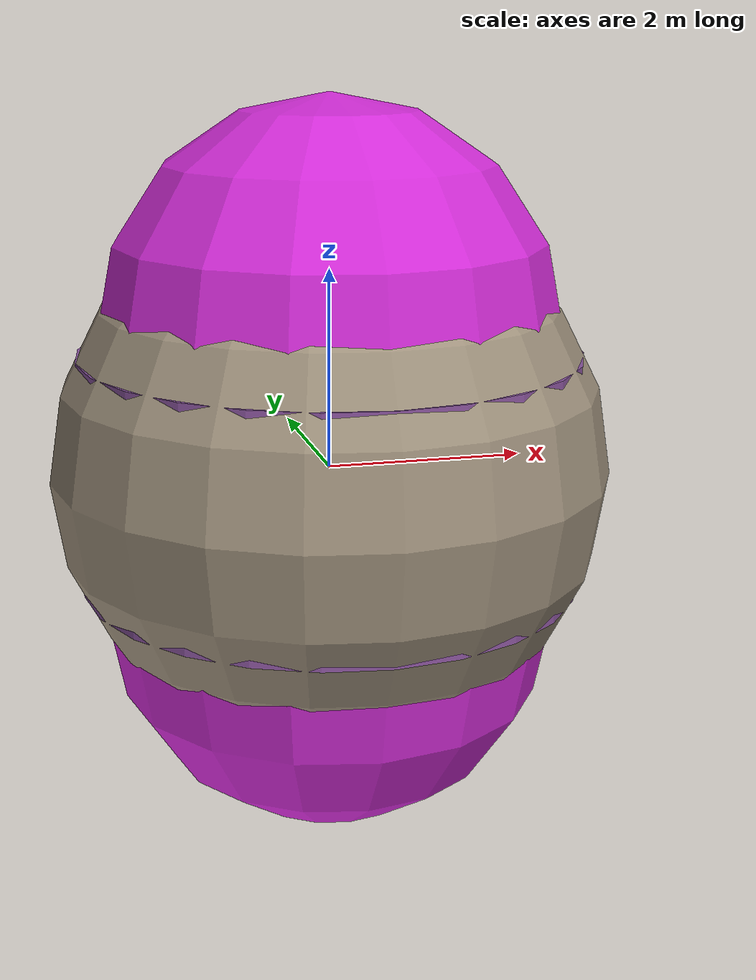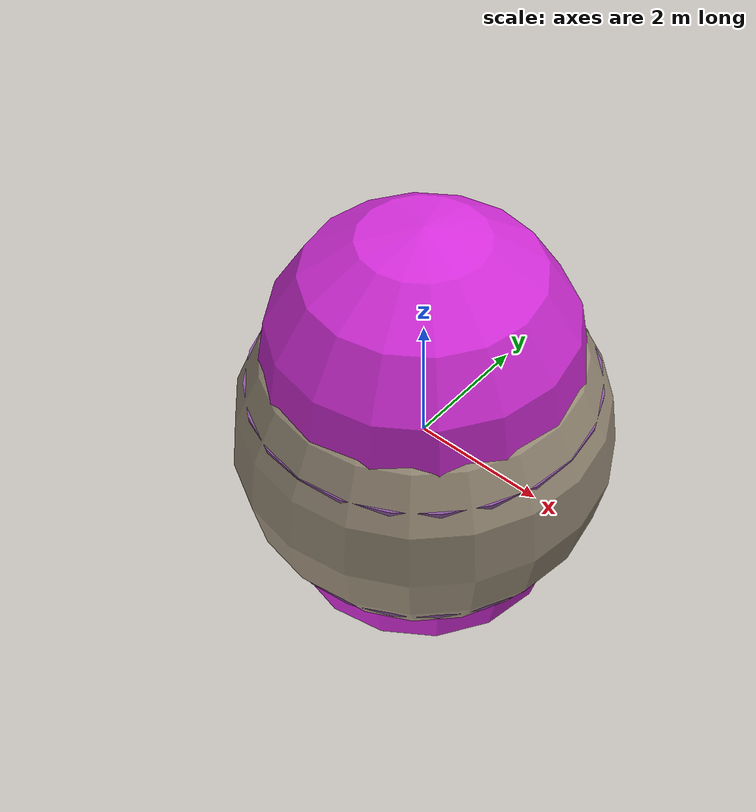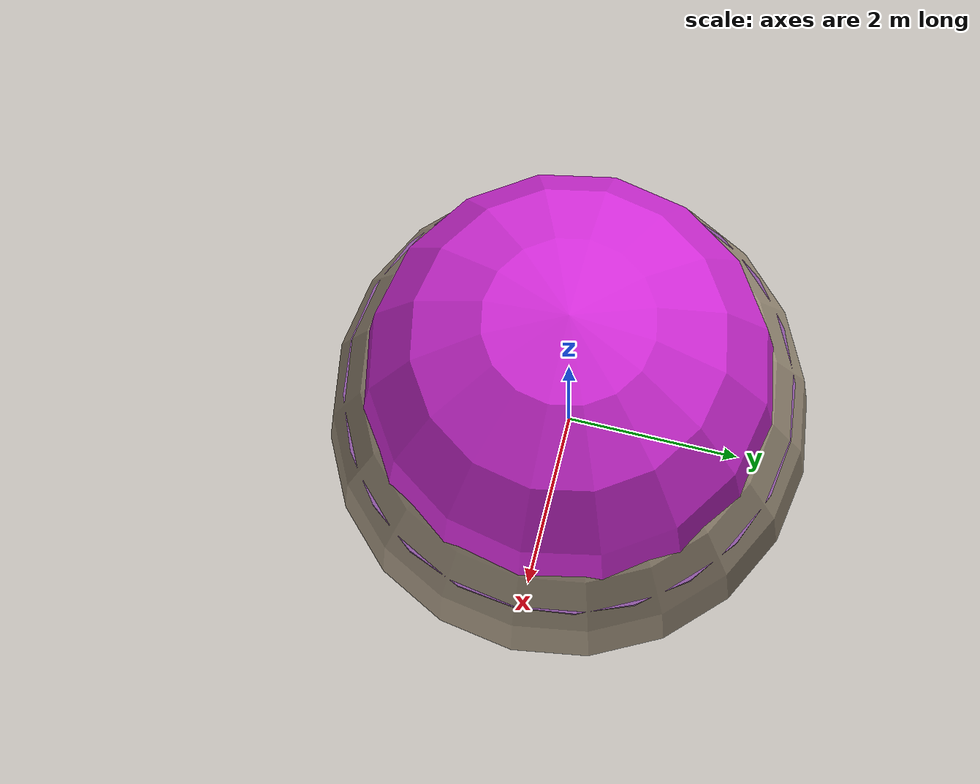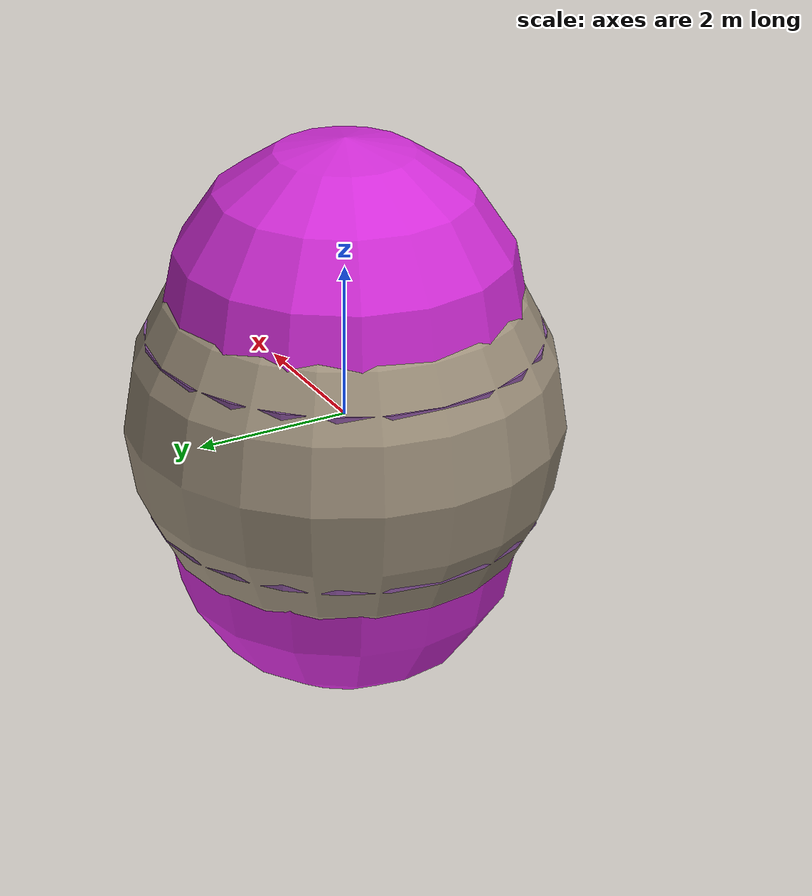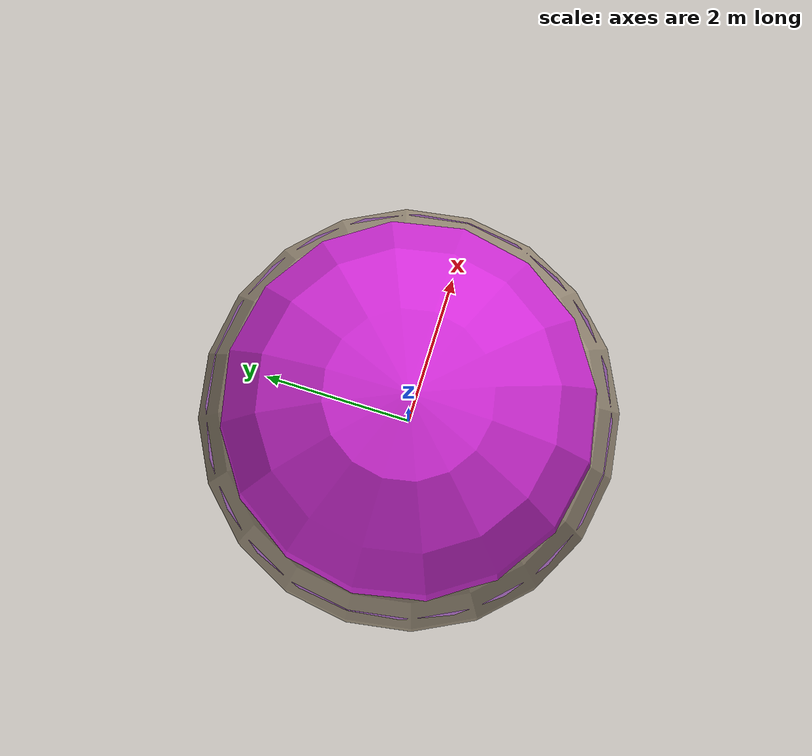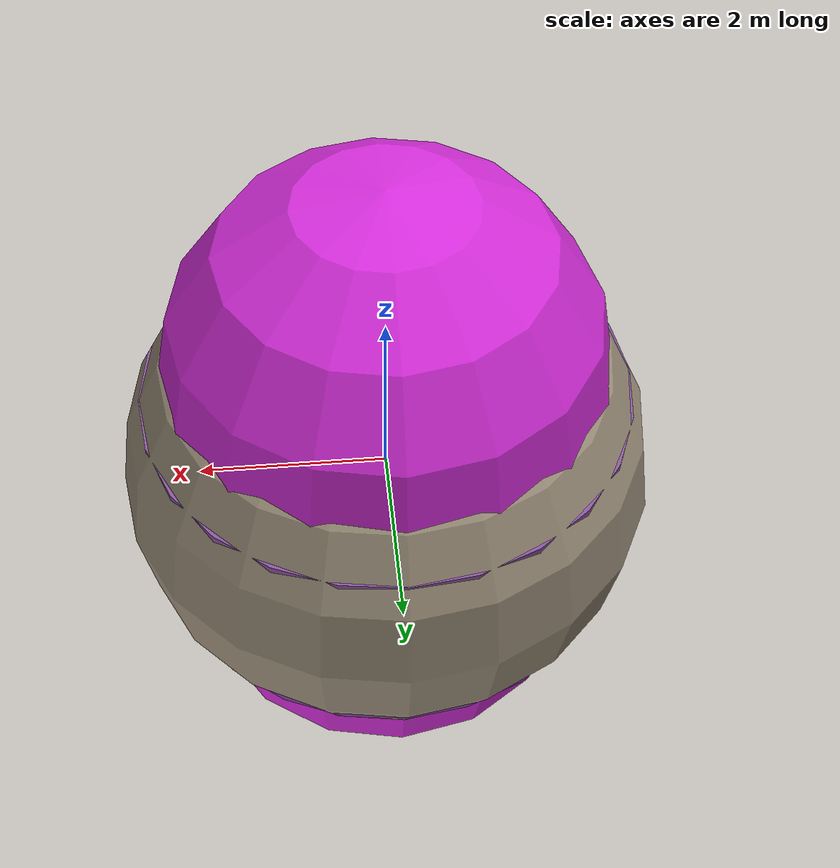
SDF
<sdf version='1.11'>
  <world name='world_0'>
    <gravity>0 0 -9.8066499999999994</gravity>
    <magnetic_field>5.5644999999999998e-06 2.2875799999999999e-05 -4.2388400000000002e-05</magnetic_field>
    <wind>
      <linear_velocity>0 0 0</linear_velocity>
    </wind>
    <physics default='false' type='ode'>
      <max_step_size>0.001</max_step_size>
      <real_time_factor>1</real_time_factor>
      <max_contacts>20</max_contacts>
    </physics>
    <model name='model_0'>
      <static>false</static>
      <self_collide>false</self_collide>
      <allow_auto_disable>true</allow_auto_disable>
      <enable_wind>false</enable_wind>
      <pose>0 0 0 0 0 0</pose>
      <link name='link_0'>
        <pose>0 0 0 0 0 0</pose>
        <inertial>
          <pose>0 0 0 0 0 0</pose>
          <mass>1</mass>
          <inertia>
            <ixx>1</ixx>
            <ixy>0</ixy>
            <ixz>0</ixz>
            <iyy>1</iyy>
            <iyz>0</iyz>
            <izz>1</izz>
          </inertia>
        </inertial>
        <enable_wind>false</enable_wind>
        <collision name='collision_0'>
          <pose>0 0 0 0 0 0</pose>
          <geometry>
            <capsule>
              <radius>2.2846069828375208</radius>
              <length>2.8134129173356595</length>
            </capsule>
          </geometry>
          <surface>
            <contact>
              <collide_bitmask>255</collide_bitmask>
            </contact>
            <friction>
              <ode>
                <mu>1</mu>
                <mu2>1</mu2>
                <slip1>0</slip1>
                <slip2>0</slip2>
                <fdir1>0 0 0</fdir1>
              </ode>
            </friction>
          </surface>
        </collision>
        <visual name='visual_0'>
          <pose>0 0 0 0 0 0</pose>
          <geometry>
            <capsule>
              <radius>2.2846069828375208</radius>
              <length>2.8134129173356595</length>
            </capsule>
          </geometry>
          <cast_shadows>true</cast_shadows>
          <laser_retro>0</laser_retro>
          <transparency>0</transparency>
          <visibility_flags>4294967295</visibility_flags>
          <material>
            <ambient>0.827514529 0.172673672 0.847678721 1</ambient>
            <diffuse>0.827514529 0.172673672 0.847678721 1</diffuse>
            <specular>0 0 0 1</specular>
            <emissive>0 0 0 1</emissive>
            <render_order>0</render_order>
            <lighting>true</lighting>
            <double_sided>false</double_sided>
            <shader type='pixel'/>
          </material>
        </visual>
      </link>
      <link name='link_1'>
        <pose>0 0 0 0 0 0</pose>
        <inertial>
          <pose>0 0 0 0 0 0</pose>
          <mass>1</mass>
          <inertia>
            <ixx>1</ixx>
            <ixy>0</ixy>
            <ixz>0</ixz>
            <iyy>1</iyy>
            <iyz>0</iyz>
            <izz>1</izz>
          </inertia>
        </inertial>
        <enable_wind>false</enable_wind>
        <collision name='collision_1'>
          <pose>0 0 0 0 0 0</pose>
          <geometry>
            <capsule>
              <radius>1.3565003896441572</radius>
              <length>2.2001328972218723</length>
            </capsule>
          </geometry>
          <surface>
            <contact>
              <collide_bitmask>255</collide_bitmask>
            </contact>
            <friction>
              <ode>
                <mu>1</mu>
                <mu2>1</mu2>
                <slip1>0</slip1>
                <slip2>0</slip2>
                <fdir1>0 0 0</fdir1>
              </ode>
            </friction>
          </surface>
        </collision>
        <visual name='visual_1'>
          <pose>0 0 0 0 0 0</pose>
          <geometry>
            <capsule>
              <radius>1.3565003896441572</radius>
              <length>2.2001328972218723</length>
            </capsule>
          </geometry>
          <cast_shadows>true</cast_shadows>
          <laser_retro>0</laser_retro>
          <transparency>0</transparency>
          <visibility_flags>4294967295</visibility_flags>
          <material>
            <ambient>0.748498976 0.460114151 0.171141386 1</ambient>
            <diffuse>0.748498976 0.460114151 0.171141386 1</diffuse>
            <specular>0 0 0 1</specular>
            <emissive>0 0 0 1</emissive>
            <render_order>0</render_order>
            <lighting>true</lighting>
            <double_sided>false</double_sided>
            <shader type='pixel'/>
          </material>
        </visual>
      </link>
      <link name='link_2'>
        <pose>0 0 0 0 0 0</pose>
        <inertial>
          <pose>0 0 0 0 0 0</pose>
          <mass>1</mass>
          <inertia>
            <ixx>1</ixx>
            <ixy>0</ixy>
            <ixz>0</ixz>
            <iyy>1</iyy>
            <iyz>0</iyz>
            <izz>1</izz>
          </inertia>
        </inertial>
        <enable_wind>false</enable_wind>
        <collision name='collision_2'>
          <pose>0 0 0 0 0 0</pose>
          <geometry>
            <sphere>
              <radius>1.3497091000071264</radius>
            </sphere>
          </geometry>
          <surface>
            <contact>
              <collide_bitmask>255</collide_bitmask>
            </contact>
            <friction>
              <ode>
                <mu>1</mu>
                <mu2>1</mu2>
                <slip1>0</slip1>
                <slip2>0</slip2>
                <fdir1>0 0 0</fdir1>
              </ode>
            </friction>
          </surface>
        </collision>
        <visual name='visual_2'>
          <pose>0 0 0 0 0 0</pose>
          <geometry>
            <sphere>
              <radius>1.3497091000071264</radius>
            </sphere>
          </geometry>
          <cast_shadows>true</cast_shadows>
          <laser_retro>0</laser_retro>
          <transparency>0</transparency>
          <visibility_flags>4294967295</visibility_flags>
          <material>
            <ambient>0.523233235 0.625119328 0.323910534 1</ambient>
            <diffuse>0.523233235 0.625119328 0.323910534 1</diffuse>
            <specular>0 0 0 1</specular>
            <emissive>0 0 0 1</emissive>
            <render_order>0</render_order>
            <lighting>true</lighting>
            <double_sided>false</double_sided>
            <shader type='pixel'/>
          </material>
        </visual>
      </link>
      <link name='link_3'>
        <pose>0 0 0 0 0 0</pose>
        <inertial>
          <pose>0 0 0 0 0 0</pose>
          <mass>1</mass>
          <inertia>
            <ixx>1</ixx>
            <ixy>0</ixy>
            <ixz>0</ixz>
            <iyy>1</iyy>
            <iyz>0</iyz>
            <izz>1</izz>
          </inertia>
        </inertial>
        <enable_wind>false</enable_wind>
        <collision name='collision_3'>
          <pose>0 0 0 0 0 0</pose>
          <geometry>
            <cylinder>
              <radius>2.4989582118105296</radius>
              <length>2.3633662039209922</length>
            </cylinder>
          </geometry>
          <surface>
            <contact>
              <collide_bitmask>255</collide_bitmask>
            </contact>
            <friction>
              <ode>
                <mu>1</mu>
                <mu2>1</mu2>
                <slip1>0</slip1>
                <slip2>0</slip2>
                <fdir1>0 0 0</fdir1>
              </ode>
            </friction>
          </surface>
        </collision>
        <visual name='visual_3'>
          <pose>0 0 0 0 0 0</pose>
          <geometry>
            <cylinder>
              <radius>2.4989582118105296</radius>
              <length>2.3633662039209922</length>
            </cylinder>
          </geometry>
          <cast_shadows>true</cast_shadows>
          <laser_retro>0</laser_retro>
          <transparency>0</transparency>
          <visibility_flags>4294967295</visibility_flags>
          <material>
            <ambient>0.539080918 0.329530925 0.61648345 1</ambient>
            <diffuse>0.539080918 0.329530925 0.61648345 1</diffuse>
            <specular>0 0 0 1</specular>
            <emissive>0 0 0 1</emissive>
            <render_order>0</render_order>
            <lighting>true</lighting>
            <double_sided>false</double_sided>
            <shader type='pixel'/>
          </material>
        </visual>
      </link>
      <link name='link_4'>
        <pose>0 0 0 0 0 0</pose>
        <inertial>
          <pose>0 0 0 0 0 0</pose>
          <mass>1</mass>
          <inertia>
            <ixx>1</ixx>
            <ixy>0</ixy>
            <ixz>0</ixz>
            <iyy>1</iyy>
            <iyz>0</iyz>
            <izz>1</izz>
          </inertia>
        </inertial>
        <enable_wind>false</enable_wind>
        <collision name='collision_4'>
          <pose>0 0 0 0 0 0</pose>
          <geometry>
            <cylinder>
              <radius>1.0608146508026859</radius>
              <length>2.5099824759865434</length>
            </cylinder>
          </geometry>
          <surface>
            <contact>
              <collide_bitmask>255</collide_bitmask>
            </contact>
            <friction>
              <ode>
                <mu>1</mu>
                <mu2>1</mu2>
                <slip1>0</slip1>
                <slip2>0</slip2>
                <fdir1>0 0 0</fdir1>
              </ode>
            </friction>
          </surface>
        </collision>
        <visual name='visual_4'>
          <pose>0 0 0 0 0 0</pose>
          <geometry>
            <cylinder>
              <radius>1.0608146508026859</radius>
              <length>2.5099824759865434</length>
            </cylinder>
          </geometry>
          <cast_shadows>true</cast_shadows>
          <laser_retro>0</laser_retro>
          <transparency>0</transparency>
          <visibility_flags>4294967295</visibility_flags>
          <material>
            <ambient>0.0720949844 0.435474277 0.79537642 1</ambient>
            <diffuse>0.0720949844 0.435474277 0.79537642 1</diffuse>
            <specular>0 0 0 1</specular>
            <emissive>0 0 0 1</emissive>
            <render_order>0</render_order>
            <lighting>true</lighting>
            <double_sided>false</double_sided>
            <shader type='pixel'/>
          </material>
        </visual>
      </link>
    </model>
    <model name='model_1'>
      <static>false</static>
      <self_collide>false</self_collide>
      <allow_auto_disable>true</allow_auto_disable>
      <enable_wind>false</enable_wind>
      <pose>0 0 0 0 0 0</pose>
      <link name='link_5'>
        <pose>0 0 0 0 0 0</pose>
        <inertial>
          <pose>0 0 0 0 0 0</pose>
          <mass>1</mass>
          <inertia>
            <ixx>1</ixx>
            <ixy>0</ixy>
            <ixz>0</ixz>
            <iyy>1</iyy>
            <iyz>0</iyz>
            <izz>1</izz>
          </inertia>
        </inertial>
        <enable_wind>false</enable_wind>
        <collision name='collision_5'>
          <pose>0 0 0 0 0 0</pose>
          <geometry>
            <capsule>
              <radius>1.8493760360779095</radius>
              <length>2.6660123862123624</length>
            </capsule>
          </geometry>
          <surface>
            <contact>
              <collide_bitmask>255</collide_bitmask>
            </contact>
            <friction>
              <ode>
                <mu>1</mu>
                <mu2>1</mu2>
                <slip1>0</slip1>
                <slip2>0</slip2>
                <fdir1>0 0 0</fdir1>
              </ode>
            </friction>
          </surface>
        </collision>
        <visual name='visual_5'>
          <pose>0 0 0 0 0 0</pose>
          <geometry>
            <capsule>
              <radius>1.8493760360779095</radius>
              <length>2.6660123862123624</length>
            </capsule>
          </geometry>
          <cast_shadows>true</cast_shadows>
          <laser_retro>0</laser_retro>
          <transparency>0</transparency>
          <visibility_flags>4294967295</visibility_flags>
          <material>
            <ambient>0.369175732 0.0446811207 0.445994288 1</ambient>
            <diffuse>0.369175732 0.0446811207 0.445994288 1</diffuse>
            <specular>0 0 0 1</specular>
            <emissive>0 0 0 1</emissive>
            <render_order>0</render_order>
            <lighting>true</lighting>
            <double_sided>false</double_sided>
            <shader type='pixel'/>
          </material>
        </visual>
      </link>
      <link name='link_6'>
        <pose>0 0 0 0 0 0</pose>
        <inertial>
          <pose>0 0 0 0 0 0</pose>
          <mass>1</mass>
          <inertia>
            <ixx>1</ixx>
            <ixy>0</ixy>
            <ixz>0</ixz>
            <iyy>1</iyy>
            <iyz>0</iyz>
            <izz>1</izz>
          </inertia>
        </inertial>
        <enable_wind>false</enable_wind>
        <collision name='collision_6'>
          <pose>0 0 0 0 0 0</pose>
          <geometry>
            <capsule>
              <radius>1.3330080524129895</radius>
              <length>1.63071210387847</length>
            </capsule>
          </geometry>
          <surface>
            <contact>
              <collide_bitmask>255</collide_bitmask>
            </contact>
            <friction>
              <ode>
                <mu>1</mu>
                <mu2>1</mu2>
                <slip1>0</slip1>
                <slip2>0</slip2>
                <fdir1>0 0 0</fdir1>
              </ode>
            </friction>
          </surface>
        </collision>
        <visual name='visual_6'>
          <pose>0 0 0 0 0 0</pose>
          <geometry>
            <capsule>
              <radius>1.3330080524129895</radius>
              <length>1.63071210387847</length>
            </capsule>
          </geometry>
          <cast_shadows>true</cast_shadows>
          <laser_retro>0</laser_retro>
          <transparency>0</transparency>
          <visibility_flags>4294967295</visibility_flags>
          <material>
            <ambient>0.552939773 0.0517613515 0.724765003 1</ambient>
            <diffuse>0.552939773 0.0517613515 0.724765003 1</diffuse>
            <specular>0 0 0 1</specular>
            <emissive>0 0 0 1</emissive>
            <render_order>0</render_order>
            <lighting>true</lighting>
            <double_sided>false</double_sided>
            <shader type='pixel'/>
          </material>
        </visual>
      </link>
      <link name='link_7'>
        <pose>0 0 0 0 0 0</pose>
        <inertial>
          <pose>0 0 0 0 0 0</pose>
          <mass>1</mass>
          <inertia>
            <ixx>1</ixx>
            <ixy>0</ixy>
            <ixz>0</ixz>
            <iyy>1</iyy>
            <iyz>0</iyz>
            <izz>1</izz>
          </inertia>
        </inertial>
        <enable_wind>false</enable_wind>
        <collision name='collision_7'>
          <pose>0 0 0 0 0 0</pose>
          <geometry>
            <sphere>
              <radius>2.7874480044002281</radius>
            </sphere>
          </geometry>
          <surface>
            <contact>
              <collide_bitmask>255</collide_bitmask>
            </contact>
            <friction>
              <ode>
                <mu>1</mu>
                <mu2>1</mu2>
                <slip1>0</slip1>
                <slip2>0</slip2>
                <fdir1>0 0 0</fdir1>
              </ode>
            </friction>
          </surface>
        </collision>
        <visual name='visual_7'>
          <pose>0 0 0 0 0 0</pose>
          <geometry>
            <sphere>
              <radius>2.7874480044002281</radius>
            </sphere>
          </geometry>
          <cast_shadows>true</cast_shadows>
          <laser_retro>0</laser_retro>
          <transparency>0</transparency>
          <visibility_flags>4294967295</visibility_flags>
          <material>
            <ambient>0.623547316 0.570981145 0.490044594 1</ambient>
            <diffuse>0.623547316 0.570981145 0.490044594 1</diffuse>
            <specular>0 0 0 1</specular>
            <emissive>0 0 0 1</emissive>
            <render_order>0</render_order>
            <lighting>true</lighting>
            <double_sided>false</double_sided>
            <shader type='pixel'/>
          </material>
        </visual>
      </link>
      <link name='link_8'>
        <pose>0 0 0 0 0 0</pose>
        <inertial>
          <pose>0 0 0 0 0 0</pose>
          <mass>1</mass>
          <inertia>
            <ixx>1</ixx>
            <ixy>0</ixy>
            <ixz>0</ixz>
            <iyy>1</iyy>
            <iyz>0</iyz>
            <izz>1</izz>
          </inertia>
        </inertial>
        <enable_wind>false</enable_wind>
        <collision name='collision_8'>
          <pose>0 0 0 0 0 0</pose>
          <geometry>
            <capsule>
              <radius>1.1752741327614658</radius>
              <length>1.0230929708268364</length>
            </capsule>
          </geometry>
          <surface>
            <contact>
              <collide_bitmask>255</collide_bitmask>
            </contact>
            <friction>
              <ode>
                <mu>1</mu>
                <mu2>1</mu2>
                <slip1>0</slip1>
                <slip2>0</slip2>
                <fdir1>0 0 0</fdir1>
              </ode>
            </friction>
          </surface>
        </collision>
        <visual name='visual_8'>
          <pose>0 0 0 0 0 0</pose>
          <geometry>
            <capsule>
              <radius>1.1752741327614658</radius>
              <length>1.0230929708268364</length>
            </capsule>
          </geometry>
          <cast_shadows>true</cast_shadows>
          <laser_retro>0</laser_retro>
          <transparency>0</transparency>
          <visibility_flags>4294967295</visibility_flags>
          <material>
            <ambient>0.0240734071 0.188749194 0.557367384 1</ambient>
            <diffuse>0.0240734071 0.188749194 0.557367384 1</diffuse>
            <specular>0 0 0 1</specular>
            <emissive>0 0 0 1</emissive>
            <render_order>0</render_order>
            <lighting>true</lighting>
            <double_sided>false</double_sided>
            <shader type='pixel'/>
          </material>
        </visual>
      </link>
      <link name='link_9'>
        <pose>0 0 0 0 0 0</pose>
        <inertial>
          <pose>0 0 0 0 0 0</pose>
          <mass>1</mass>
          <inertia>
            <ixx>1</ixx>
            <ixy>0</ixy>
            <ixz>0</ixz>
            <iyy>1</iyy>
            <iyz>0</iyz>
            <izz>1</izz>
          </inertia>
        </inertial>
        <enable_wind>false</enable_wind>
        <collision name='collision_9'>
          <pose>0 0 0 0 0 0</pose>
          <geometry>
            <sphere>
              <radius>2.3222196935509145</radius>
            </sphere>
          </geometry>
          <surface>
            <contact>
              <collide_bitmask>255</collide_bitmask>
            </contact>
            <friction>
              <ode>
                <mu>1</mu>
                <mu2>1</mu2>
                <slip1>0</slip1>
                <slip2>0</slip2>
                <fdir1>0 0 0</fdir1>
              </ode>
            </friction>
          </surface>
        </collision>
        <visual name='visual_9'>
          <pose>0 0 0 0 0 0</pose>
          <geometry>
            <sphere>
              <radius>2.3222196935509145</radius>
            </sphere>
          </geometry>
          <cast_shadows>true</cast_shadows>
          <laser_retro>0</laser_retro>
          <transparency>0</transparency>
          <visibility_flags>4294967295</visibility_flags>
          <material>
            <ambient>0.45434612 0.729972899 0.591438413 1</ambient>
            <diffuse>0.45434612 0.729972899 0.591438413 1</diffuse>
            <specular>0 0 0 1</specular>
            <emissive>0 0 0 1</emissive>
            <render_order>0</render_order>
            <lighting>true</lighting>
            <double_sided>false</double_sided>
            <shader type='pixel'/>
          </material>
        </visual>
      </link>
    </model>
    <model name='ground_model'>
      <static>true</static>
      <self_collide>false</self_collide>
      <allow_auto_disable>true</allow_auto_disable>
      <enable_wind>false</enable_wind>
      <pose>0 0 0 0 0 0</pose>
      <link name='ground_link'>
        <pose>0 0 0 0 0 0</pose>
        <inertial>
          <pose>0 0 0 0 0 0</pose>
          <mass>1</mass>
          <inertia>
            <ixx>1</ixx>
            <ixy>0</ixy>
            <ixz>0</ixz>
            <iyy>1</iyy>
            <iyz>0</iyz>
            <izz>1</izz>
          </inertia>
        </inertial>
        <enable_wind>false</enable_wind>
        <collision name='ground_collision'>
          <pose>0 0 0 0 0 0</pose>
          <geometry>
            <plane>
              <normal>0 0 1</normal>
              <size>20.961521352348832 21.002447195476101</size>
            </plane>
          </geometry>
          <surface>
            <contact>
              <collide_bitmask>255</collide_bitmask>
            </contact>
            <friction>
              <ode>
                <mu>1</mu>
                <mu2>1</mu2>
                <slip1>0</slip1>
                <slip2>0</slip2>
                <fdir1>0 0 0</fdir1>
              </ode>
            </friction>
          </surface>
        </collision>
      </link>
    </model>
    <joint name='joint_0' type='continuous'>
      <pose>0 0 0 0 0 0</pose>
      <parent>model_1</parent>
      <child>model_0</child>
    </joint>
    <joint name='joint_1' type='revolute'>
      <pose>0 0 0 0 0 0</pose>
      <parent>model_1</parent>
      <child>model_0</child>
    </joint>
    <joint name='joint_2' type='fixed'>
      <pose>0 0 0 0 0 0</pose>
      <parent>model_1</parent>
      <child>model_0</child>
    </joint>
    <joint name='joint_3' type='continuous'>
      <pose>0 0 0 0 0 0</pose>
      <parent>model_1</parent>
      <child>model_0</child>
    </joint>
    <joint name='joint_4' type='fixed'>
      <pose>0 0 0 0 0 0</pose>
      <parent>model_1</parent>
      <child>model_0</child>
    </joint>
    <atmosphere type='adiabatic'>
      <temperature>288.14999999999998</temperature>
      <pressure>101325</pressure>
      <temperature_gradient>-0.0064999999999999997</temperature_gradient>
    </atmosphere>
    <scene>
      <ambient>0.400000006 0.400000006 0.400000006 1</ambient>
      <background>0.699999988 0.699999988 0.699999988 1</background>
      <grid>true</grid>
      <origin_visual>true</origin_visual>
      <shadows>true</shadows>
    </scene>
  </world>
</sdf>
